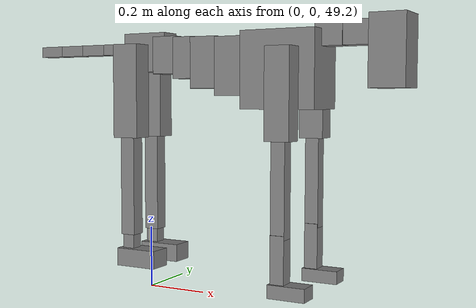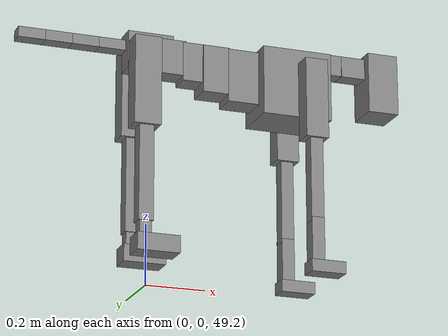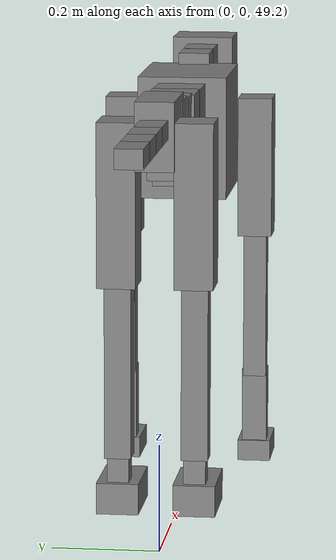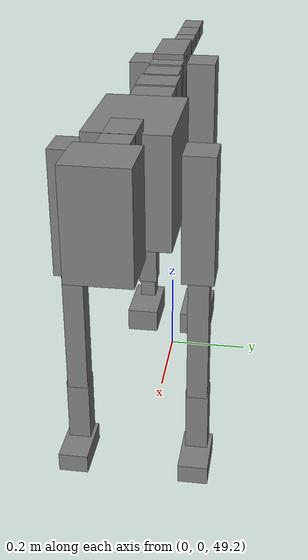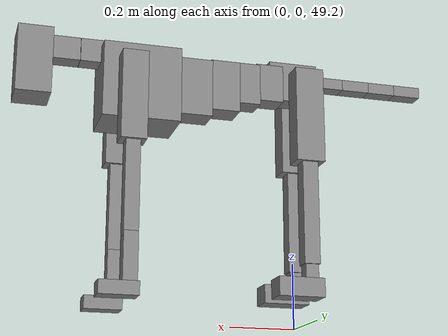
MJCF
<mujoco model="dog">

    <default>
        <joint armature="0.02" stiffness="1" damping="0.2" limited="true"/>
        <geom condim="3" friction="1 0.05 0.05" margin="0.01"/>
        <motor ctrllimited="true" ctrlrange="-1.0 1.0" forcelimited="true" gear="50"/>
    </default>

    <compiler inertiafromgeom="true" angle="radian"/>

    <option timestep="0.016" iterations="50" tolerance="1e-10" solver="Newton" jacobian="dense" cone="pyramidal"/>

    <size nconmax="20000" njmax="60000" nstack="5000000"/>
    <visual>
        <map force="0.1" zfar="30"/>
        <rgba haze="0.15 0.25 0.35 1"/>
        <quality shadowsize="2048"/>
        <global offwidth="800" offheight="800"/>
    </visual>

    <asset>
        <texture type="skybox" builtin="gradient" rgb1="0.3 0.5 0.7" rgb2="0 0 0" width="512" height="512"/>
        <texture name="texplane" type="2d" builtin="checker" rgb1=".2 .3 .4" rgb2=".1 0.15 0.2" width="512" height="512"
                 mark="cross" markrgb=".8 .8 .8"/>
        <texture name="texgeom" type="cube" builtin="flat" mark="cross" width="127" height="1278" rgb1="0.8 0.6 0.4"
                 rgb2="0.8 0.6 0.4" markrgb="1 1 1" random="0.01"/>

        <material name="matplane" reflectance="0.3" texture="texplane" texrepeat="1 1" texuniform="true"/>
        <material name="matgeom" texture="texgeom" texuniform="true" rgba="0.8 0.6 .4 1"/>
    </asset>

    <worldbody>
        <geom name="floor" pos="0 0 0" size="0 0 .25" type="plane" material="matplane" condim="3"/>

        <light directional="false" diffuse=".2 .2 .2" specular="0 0 0" pos="0 0 5" dir="0 0 -1" castshadow="false"/>
        <light mode="targetbodycom" target="torso" directional="false" diffuse=".8 .8 .8" specular="0.3 0.3 0.3"
               pos="0 0 4.0" dir="0 0 -1"/>

        <body name="root" pos="0 0 50">
            <freejoint name="root_1"/>
            <geom type="box" pos="0 0 -0.02" size="0.0774  0.0358  0.063" density="2030"/>

            <body name="spine1" pos="0.054 0 0">
                <joint name="spine1_y" axis="0 1 0" range="0 0.7" limited="true"/>
                <geom type="box" pos="0.02375 0 -0.03" size="0.04375  0.0375  0.05985" density="2030"/>

                <body name="spine2" pos="0.0612 0 0">
                    <joint name="spine2_y" axis="0 1 0" range="-0.15 0.15" limited="true"/>
                    <geom type="box" pos="0.03555  0  -0.04" size="0.04055  0.039  0.06615" density="2030"/>

                    <body name="spine3" pos="0.0730 0 0">
                        <joint name="spine3_y" axis="0 1 0" range="-0.15 0.15" limited="true"/>
                        <geom type="box" pos="0.03555  0  -0.057" size="0.04555  0.0445  0.081" density="2030"/>

                        <body name="spine4" pos="0.0780 0 0">
                            <joint name="spine4_y" axis="0 1 0" range="-0.15 0.15" limited="true"/>
                            <geom type="box" pos="0.05265  0  -0.07" size="0.05265  0.045  0.09135" density="2030"/>

                            <body name="torso" pos="0.1082 0 0">
                                <joint name="torso_y" axis="0 1 0" range="-0.15 0.15" limited="true"/>
                                <geom type="box" pos="0.11925  0  -0.085" size="0.11925  0.085  0.11745"
                                      density="2030"/>

                                <body name="neck1" pos="0.2160  0   0.0180">
                                    <joint name="neck1_y" axis="0 1 0" range="-1.2  -1" limited="true"/>
                                    <geom type="box" pos="0.0423  0  0" size="0.0423  0.03  0.036" density="2325"/>

                                    <body name="neck2" pos="0.0853  0  0">
                                        <joint name="neck2_y" axis="0 1 0" range="0.1  0" limited="true"/>
                                        <geom type="box" pos="0.0423  0  0" size="0.0423  0.03  0.036" density="2325"/>

                                        <body name="head" pos="0.0853  0  0">
                                            <joint name="head_y" axis="0 1 0" range="-0.3  -0.2" limited="true"/>
                                            <geom type="box" pos="0.0531  0  -0.055" size="0.0531  0.06  0.1044"
                                                  density="4030"/>

                                        </body>
                                    </body>
                                </body>

                                <body name="front_shoulder" pos="0.156  0   -0.0480">
                                    <joint name="front_shoulder_y" axis="0 1 0" range="-1 1.5" limited="true"/>
                                    <geom type="box" pos="0 0.13 -0.1093" size="0.0387  0.0331  0.1359" density="1158"/>
                                    <geom type="box" pos="0 -0.13 -0.1093" size="0.0387  0.0331  0.1359"
                                          density="1158"/>

                                    <body name="front_elbow" pos="0  0  -0.2186">
                                        <joint name="front_elbow_y" axis="0 1 0" range="-2 0" limited="true"/>
                                        <geom type="box" pos="0 0.13 -0.1547" size="0.0217  0.0221  0.1547"
                                              density="1081"/>
                                        <geom type="box" pos="0 -0.13 -0.1547" size="0.0217  0.0221  0.1547"
                                              density="1081"/>

                                        <body name="front_wrist" pos="0  0  -0.3094">
                                            <joint name="front_wrist_y" axis="0 1 0" range="-0.2 0" limited="true"/>
                                            <geom type="box" pos="0 0.13 -0.0725" size="0.0215  0.0239  0.0856"
                                                  density="1664"/>
                                            <geom type="box" pos="0 -0.13 -0.0725" size="0.0215  0.0239  0.0856"
                                                  density="1664"/>

                                            <body name="front_finger_end" pos="0  0  -0.1449">
                                                <joint name="front_finger_y" axis="0 1 0" range="-0.4 1"
                                                       limited="true"/>
                                                <geom type="box" pos="0.0317  0.13  -0.0053"
                                                      size="0.0582  0.0317  0.0203" density="1515"/>
                                                <geom type="box" pos="0.0317  -0.13  -0.0053"
                                                      size="0.0582  0.0317  0.0203" density="1515"/>

                                            </body>

                                        </body>
                                    </body>
                                </body>

                            </body>
                        </body>
                    </body>
                </body>
            </body>

            <body name="back_hip" pos="-0.03 0 -0.018">
                <joint name="back_hip_y" axis="0 1 0" range="-1.5 0.3" limited="true"/>
                <geom type="box" pos="0 0.07 -0.1277" size="0.0449  0.0352  0.1505" density="1154"/>
                <geom type="box" pos="0 -0.07 -0.1277" size="0.0449  0.0352  0.1505" density="1154"/>

                <body name="back_knee" pos="0  0  -0.2554">
                    <joint name="back_knee_y" axis="0 1 0" range="0 2.8" limited="true"/>
                    <geom type="box" pos="0 0.07 -0.1625" size="0.0246  0.0243  0.1781" density="1227"/>
                    <geom type="box" pos="0 -0.07 -0.1625" size="0.0246  0.0243  0.1781" density="1227"/>

                    <body name="back_ankle" pos="0  0  -0.3250">
                        <joint name="back_ankle_y" axis="0 1 0" range="-2.2 0" limited="true"/>
                        <geom type="box" pos="0 0.07 -0.0377" size="0.0201  0.0201  0.0490" density="1284"/>
                        <geom type="box" pos="0 -0.07 -0.0377" size="0.0201  0.0201  0.0490" density="1284"/>

                        <body name="back_toe_end" pos="0  0  -0.0755">
                            <joint name="back_toe_y" axis="0 1 0" range="-0.4 1" limited="true"/>
                            <geom type="box" pos="0.0387  0.07  -0.0137" size="0.0709  0.0387  0.0287" density="1515"/>
                            <geom type="box" pos="0.0387  -0.07  -0.0137" size="0.0709  0.0387  0.0287" density="1515"/>

                        </body>
                    </body>
                </body>
            </body>

            <body name="tail1" pos="-0.074 0 -0.006">
                <joint name="tail1_y" axis="0 1 0" range="-0.2 0.2" limited="true"/>
                <geom type="box" pos="-0.0536  0  0" size="0.045  0.025  0.0175" density="1587"/>

                <body name="tail2" pos="-0.09 0 0">
                    <joint name="tail2_y" axis="0 1 0" range="-0.2 0.2" limited="true"/>
                    <geom type="box" pos="-0.0536  0  0" size="0.045  0.025  0.0175" density="1587"/>

                    <body name="tail3" pos="-0.09 0 0">
                        <joint name="tail3_y" axis="0 1 0" range="-0.2 0.2" limited="true"/>
                        <geom type="box" pos="-0.0536  0  0" size="0.045  0.025  0.0175" density="1587"/>

                        <body name="tail4" pos="-0.09 0 0">
                            <joint name="tail4_y" axis="0 1 0" range="-0.2 0.2" limited="true"/>
                            <geom type="box" pos="-0.0536  0  0" size="0.045  0.025  0.0175" density="1587"/>

                        </body>
                    </body>
                </body>
            </body>
        </body>
    </worldbody>

    <actuator>
        <motor joint="spine1_y" forcerange="-150 150     "/>
        <motor joint="spine2_y" forcerange="-150 150     "/>
        <motor joint="spine3_y" forcerange="-150 150     "/>
        <motor joint="spine4_y" forcerange="-150 150     "/>
        <motor joint="torso_y" forcerange="-150 150     "/>
        <motor joint="neck1_y" forcerange="-100 100       "/>
        <motor joint="neck2_y" forcerange="-100 100       "/>
        <motor joint="head_y" forcerange="-150 150       "/>
        <motor joint="front_shoulder_y" forcerange="-123.71 196.96"/>
        <motor joint="front_elbow_y" forcerange="-136.33 124.68"/>
        <motor joint="front_wrist_y" forcerange="-101.27 89.78"/>
        <motor joint="front_finger_y" forcerange="-51.40 77.87"/>
        <motor joint="back_hip_y" forcerange="-363.61 306.05"/>
        <motor joint="back_knee_y" forcerange="-341.69 211.52"/>
        <motor joint="back_angle_y" forcerange="-123.98 97.80"/>
        <motor joint="back_toe_y" forcerange="-95.67 133.76"/>
        <motor joint="tail1_y" forcerange="-50 50     "/>
        <motor joint="tail2_y" forcerange="-50 50     "/>
        <motor joint="tail3_y" forcerange="-50 50     "/>
        <motor joint="tail4_y" forcerange="-50 50     "/>
    </actuator>
</mujoco>
